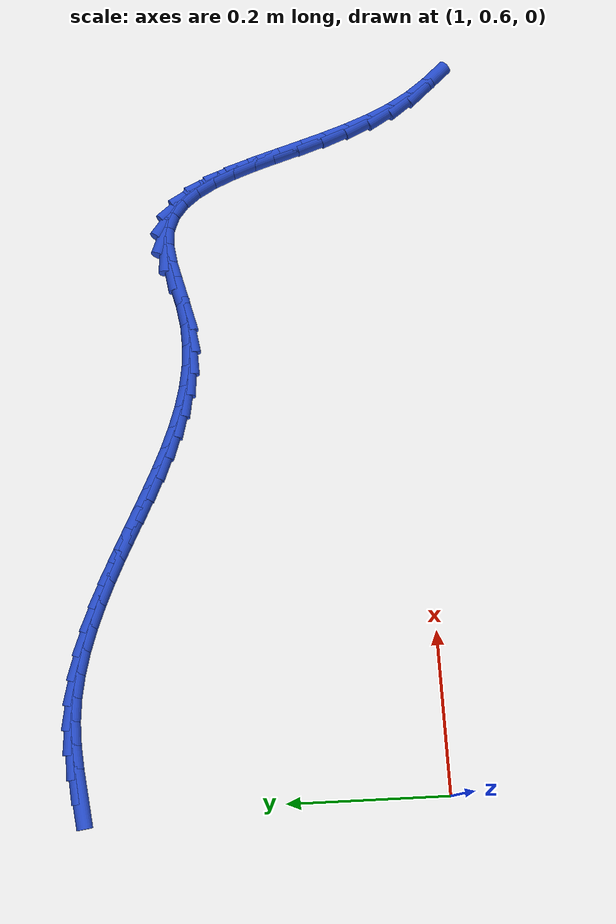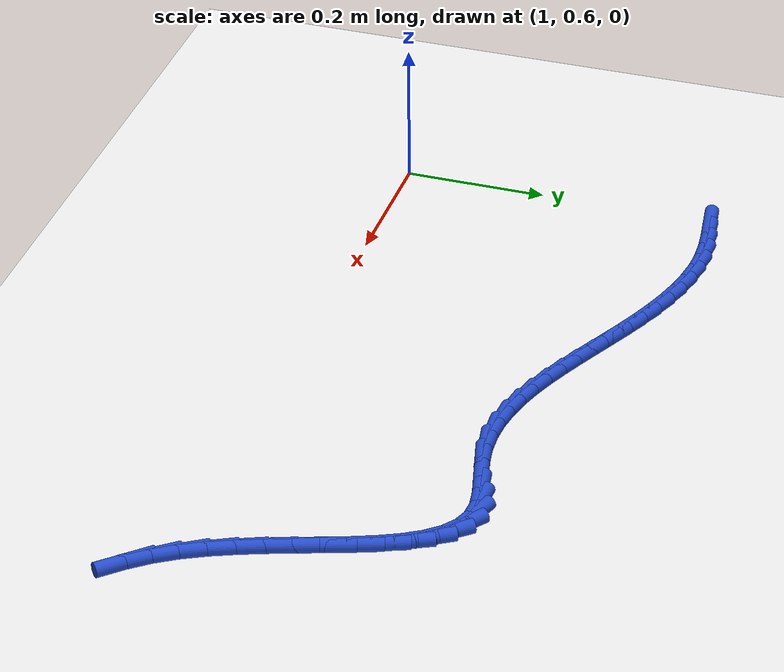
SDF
<sdf version="1.6">
 <world name="default">
  <model name="ground_plane">
   <static>1</static>
   <link name="link">
    <collision name="collision">
     <geometry><plane><normal>0 0 1</normal><size>100 100</size></plane></geometry>
     <surface><friction><ode><mu>100</mu><mu2>50</mu2></ode></friction></surface>
    </collision>
    <visual name="visual">
     <cast_shadows>0</cast_shadows>
     <geometry><plane><normal>0 0 1</normal><size>100 100</size></plane></geometry>
     <material>
      <script><uri>file://media/materials/scripts/gazebo.material</uri><name>Gazebo/WhiteGlow</name></script>
     </material>
    </visual>
   </link>
  </model>
  <model name="line">
   <link name="link_57">
    <pose>1.0230441852304586 1.0486521585114175 0.01 0 1.57 0.14526111254245366</pose>
    <collision name="collision">
     <geometry><cylinder><radius>0.01</radius><length>0.08</length></cylinder></geometry>
    </collision>
    <visual name="visual">
     <material>
      <script><name>Gazebo/Blue</name><uri>file://media/materials/scripts/gazebo.material</uri></script>
     </material>
     <geometry><cylinder><radius>0.01</radius><length>0.08</length></cylinder></geometry>
    </visual>
   </link>
   <link name="link_58">
    <pose>1.0520572898040104 1.0528965296354693 0.01 0 1.57 0.1042041462762869</pose>
    <collision name="collision">
     <geometry><cylinder><radius>0.01</radius><length>0.08</length></cylinder></geometry>
    </collision>
    <visual name="visual">
     <material>
      <script><name>Gazebo/Blue</name><uri>file://media/materials/scripts/gazebo.material</uri></script>
     </material>
     <geometry><cylinder><radius>0.01</radius><length>0.08</length></cylinder></geometry>
    </visual>
   </link>
   <link name="link_59">
    <pose>1.0807810896717482 1.0559005496120655 0.01 0 1.57 0.03121616731461939</pose>
    <collision name="collision">
     <geometry><cylinder><radius>0.01</radius><length>0.08</length></cylinder></geometry>
    </collision>
    <visual name="visual">
     <material>
      <script><name>Gazebo/Blue</name><uri>file://media/materials/scripts/gazebo.material</uri></script>
     </material>
     <geometry><cylinder><radius>0.01</radius><length>0.08</length></cylinder></geometry>
    </visual>
   </link>
   <link name="link_60">
    <pose>1.1094391803537835 1.056795436058363 0.01 0 1.57 -0.06659063743221426</pose>
    <collision name="collision">
     <geometry><cylinder><radius>0.01</radius><length>0.08</length></cylinder></geometry>
    </collision>
    <visual name="visual">
     <material>
      <script><name>Gazebo/Blue</name><uri>file://media/materials/scripts/gazebo.material</uri></script>
     </material>
     <geometry><cylinder><radius>0.01</radius><length>0.08</length></cylinder></geometry>
    </visual>
   </link>
   <link name="link_61">
    <pose>1.1382141633560712 1.0548764543040272 0.01 0 1.57 -0.15920112076810233</pose>
    <collision name="collision">
     <geometry><cylinder><radius>0.01</radius><length>0.08</length></cylinder></geometry>
    </collision>
    <visual name="visual">
     <material>
      <script><name>Gazebo/Blue</name><uri>file://media/materials/scripts/gazebo.material</uri></script>
     </material>
     <geometry><cylinder><radius>0.01</radius><length>0.08</length></cylinder></geometry>
    </visual>
   </link>
   <link name="link_62">
    <pose>1.1670883401589136 1.050240419897703 0.01 0 1.57 -0.23806759459187515</pose>
    <collision name="collision">
     <geometry><cylinder><radius>0.01</radius><length>0.08</length></cylinder></geometry>
    </collision>
    <visual name="visual">
     <material>
      <script><name>Gazebo/Blue</name><uri>file://media/materials/scripts/gazebo.material</uri></script>
     </material>
     <geometry><cylinder><radius>0.01</radius><length>0.08</length></cylinder></geometry>
    </visual>
   </link>
   <link name="link_63">
    <pose>1.1959829302676999 1.0432285830565193 0.01 0 1.57 -0.303990715160315</pose>
    <collision name="collision">
     <geometry><cylinder><radius>0.01</radius><length>0.08</length></cylinder></geometry>
    </collision>
    <visual name="visual">
     <material>
      <script><name>Gazebo/Blue</name><uri>file://media/materials/scripts/gazebo.material</uri></script>
     </material>
     <geometry><cylinder><radius>0.01</radius><length>0.08</length></cylinder></geometry>
    </visual>
   </link>
   <link name="link_64">
    <pose>1.2248191383475184 1.034182253384738 0.01 0 1.57 -0.35807937355999697</pose>
    <collision name="collision">
     <geometry><cylinder><radius>0.01</radius><length>0.08</length></cylinder></geometry>
    </collision>
    <visual name="visual">
     <material>
      <script><name>Gazebo/Blue</name><uri>file://media/materials/scripts/gazebo.material</uri></script>
     </material>
     <geometry><cylinder><radius>0.01</radius><length>0.08</length></cylinder></geometry>
    </visual>
   </link>
   <link name="link_65">
    <pose>1.2535181690634607 1.0234427404866215 0.01 0 1.57 -0.40145683568590046</pose>
    <collision name="collision">
     <geometry><cylinder><radius>0.01</radius><length>0.08</length></cylinder></geometry>
    </collision>
    <visual name="visual">
     <material>
      <script><name>Gazebo/Blue</name><uri>file://media/materials/scripts/gazebo.material</uri></script>
     </material>
     <geometry><cylinder><radius>0.01</radius><length>0.08</length></cylinder></geometry>
    </visual>
   </link>
   <link name="link_66">
    <pose>1.2820012270806178 1.0113513539664323 0.01 0 1.57 -0.4346371529740864</pose>
    <collision name="collision">
     <geometry><cylinder><radius>0.01</radius><length>0.08</length></cylinder></geometry>
    </collision>
    <visual name="visual">
     <material>
      <script><name>Gazebo/Blue</name><uri>file://media/materials/scripts/gazebo.material</uri></script>
     </material>
     <geometry><cylinder><radius>0.01</radius><length>0.08</length></cylinder></geometry>
    </visual>
   </link>
   <link name="link_67">
    <pose>1.310209523903029 0.998255778376063 0.01 0 1.57 -0.45589552437854947</pose>
    <collision name="collision">
     <geometry><cylinder><radius>0.01</radius><length>0.08</length></cylinder></geometry>
    </collision>
    <visual name="visual">
     <material>
      <script><name>Gazebo/Blue</name><uri>file://media/materials/scripts/gazebo.material</uri></script>
     </material>
     <geometry><cylinder><radius>0.01</radius><length>0.08</length></cylinder></geometry>
    </visual>
   </link>
   <link name="link_68">
    <pose>1.3381878306703134 0.9845366963464692 0.01 0 1.57 -0.4647398906761913</pose>
    <collision name="collision">
     <geometry><cylinder><radius>0.01</radius><length>0.08</length></cylinder></geometry>
    </collision>
    <visual name="visual">
     <material>
      <script><name>Gazebo/Blue</name><uri>file://media/materials/scripts/gazebo.material</uri></script>
     </material>
     <geometry><cylinder><radius>0.01</radius><length>0.08</length></cylinder></geometry>
    </visual>
   </link>
   <link name="link_69">
    <pose>1.366014325423496 0.9705854352310186 0.01 0 1.57 -0.46121374476185983</pose>
    <collision name="collision">
     <geometry><cylinder><radius>0.01</radius><length>0.08</length></cylinder></geometry>
    </collision>
    <visual name="visual">
     <material>
      <script><name>Gazebo/Blue</name><uri>file://media/materials/scripts/gazebo.material</uri></script>
     </material>
     <geometry><cylinder><radius>0.01</radius><length>0.08</length></cylinder></geometry>
    </visual>
   </link>
   <link name="link_70">
    <pose>1.3937672025947738 0.9567933276059359 0.01 0 1.57 -0.4451175134729485</pose>
    <collision name="collision">
     <geometry><cylinder><radius>0.01</radius><length>0.08</length></cylinder></geometry>
    </collision>
    <visual name="visual">
     <material>
      <script><name>Gazebo/Blue</name><uri>file://media/materials/scripts/gazebo.material</uri></script>
     </material>
     <geometry><cylinder><radius>0.01</radius><length>0.08</length></cylinder></geometry>
    </visual>
   </link>
   <link name="link_71">
    <pose>1.4215246566163435 0.9435517060474471 0.01 0 1.57 -0.416013657188687</pose>
    <collision name="collision">
     <geometry><cylinder><radius>0.01</radius><length>0.08</length></cylinder></geometry>
    </collision>
    <visual name="visual">
     <material>
      <script><name>Gazebo/Blue</name><uri>file://media/materials/scripts/gazebo.material</uri></script>
     </material>
     <geometry><cylinder><radius>0.01</radius><length>0.08</length></cylinder></geometry>
    </visual>
   </link>
   <link name="link_72">
    <pose>1.449364881920404 0.9312519031317767 0.01 0 1.57 -0.3732869835336579</pose>
    <collision name="collision">
     <geometry><cylinder><radius>0.01</radius><length>0.08</length></cylinder></geometry>
    </collision>
    <visual name="visual">
     <material>
      <script><name>Gazebo/Blue</name><uri>file://media/materials/scripts/gazebo.material</uri></script>
     </material>
     <geometry><cylinder><radius>0.01</radius><length>0.08</length></cylinder></geometry>
    </visual>
   </link>
   <link name="link_73">
    <pose>1.4773660729391522 0.9202852514351507 0.01 0 1.57 -0.31628200689793046</pose>
    <collision name="collision">
     <geometry><cylinder><radius>0.01</radius><length>0.08</length></cylinder></geometry>
    </collision>
    <visual name="visual">
     <material>
      <script><name>Gazebo/Blue</name><uri>file://media/materials/scripts/gazebo.material</uri></script>
     </material>
     <geometry><cylinder><radius>0.01</radius><length>0.08</length></cylinder></geometry>
    </visual>
   </link>
   <link name="link_74">
    <pose>1.5056064241047866 0.9110430835337937 0.01 0 1.57 -0.24454770696590786</pose>
    <collision name="collision">
     <geometry><cylinder><radius>0.01</radius><length>0.08</length></cylinder></geometry>
    </collision>
    <visual name="visual">
     <material>
      <script><name>Gazebo/Blue</name><uri>file://media/materials/scripts/gazebo.material</uri></script>
     </material>
     <geometry><cylinder><radius>0.01</radius><length>0.08</length></cylinder></geometry>
    </visual>
   </link>
   <link name="link_75">
    <pose>1.534164129849504 0.9039167320039315 0.01 0 1.57 -0.15820672280961398</pose>
    <collision name="collision">
     <geometry><cylinder><radius>0.01</radius><length>0.08</length></cylinder></geometry>
    </collision>
    <visual name="visual">
     <material>
      <script><name>Gazebo/Blue</name><uri>file://media/materials/scripts/gazebo.material</uri></script>
     </material>
     <geometry><cylinder><radius>0.01</radius><length>0.08</length></cylinder></geometry>
    </visual>
   </link>
   <link name="link_76">
    <pose>1.5631173846055015 0.8992975294217889 0.01 0 1.57 -0.05840772057856388</pose>
    <collision name="collision">
     <geometry><cylinder><radius>0.01</radius><length>0.08</length></cylinder></geometry>
    </collision>
    <visual name="visual">
     <material>
      <script><name>Gazebo/Blue</name><uri>file://media/materials/scripts/gazebo.material</uri></script>
     </material>
     <geometry><cylinder><radius>0.01</radius><length>0.08</length></cylinder></geometry>
    </visual>
   </link>
   <link name="link_77">
    <pose>1.5925443828049772 0.8975768083635911 0.01 0 1.57 0.052292134917893925</pose>
    <collision name="collision">
     <geometry><cylinder><radius>0.01</radius><length>0.08</length></cylinder></geometry>
    </collision>
    <visual name="visual">
     <material>
      <script><name>Gazebo/Blue</name><uri>file://media/materials/scripts/gazebo.material</uri></script>
     </material>
     <geometry><cylinder><radius>0.01</radius><length>0.08</length></cylinder></geometry>
    </visual>
   </link>
   <link name="link_78">
    <pose>1.62252331888013 0.8991459014055637 0.01 0 1.57 0.16843909581495528</pose>
    <collision name="collision">
     <geometry><cylinder><radius>0.01</radius><length>0.08</length></cylinder></geometry>
    </collision>
    <visual name="visual">
     <material>
      <script><name>Gazebo/Blue</name><uri>file://media/materials/scripts/gazebo.material</uri></script>
     </material>
     <geometry><cylinder><radius>0.01</radius><length>0.08</length></cylinder></geometry>
    </visual>
   </link>
   <link name="link_79">
    <pose>1.6531147956445158 0.9043479928407998 0.01 0 1.57 0.246419456238911</pose>
    <collision name="collision">
     <geometry><cylinder><radius>0.01</radius><length>0.08</length></cylinder></geometry>
    </collision>
    <visual name="visual">
     <material>
      <script><name>Gazebo/Blue</name><uri>file://media/materials/scripts/gazebo.material</uri></script>
     </material>
     <geometry><cylinder><radius>0.01</radius><length>0.08</length></cylinder></geometry>
    </visual>
   </link>
   <link name="link_80">
    <pose>1.6838506464597114 0.9120790242835288 0.01 0 1.57 0.24621888849881454</pose>
    <collision name="collision">
     <geometry><cylinder><radius>0.01</radius><length>0.08</length></cylinder></geometry>
    </collision>
    <visual name="visual">
     <material>
      <script><name>Gazebo/Blue</name><uri>file://media/materials/scripts/gazebo.material</uri></script>
     </material>
     <geometry><cylinder><radius>0.01</radius><length>0.08</length></cylinder></geometry>
    </visual>
   </link>
   <link name="link_81">
    <pose>1.7136540949832957 0.9195691717953438 0.01 0 1.57 0.1567446117254684</pose>
    <collision name="collision">
     <geometry><cylinder><radius>0.01</radius><length>0.08</length></cylinder></geometry>
    </collision>
    <visual name="visual">
     <material>
      <script><name>Gazebo/Blue</name><uri>file://media/materials/scripts/gazebo.material</uri></script>
     </material>
     <geometry><cylinder><radius>0.01</radius><length>0.08</length></cylinder></geometry>
    </visual>
   </link>
   <link name="link_82">
    <pose>1.7414147061505718 0.923956487471135 0.01 0 1.57 -0.058823728341692555</pose>
    <collision name="collision">
     <geometry><cylinder><radius>0.01</radius><length>0.08</length></cylinder></geometry>
    </collision>
    <visual name="visual">
     <material>
      <script><name>Gazebo/Blue</name><uri>file://media/materials/scripts/gazebo.material</uri></script>
     </material>
     <geometry><cylinder><radius>0.01</radius><length>0.08</length></cylinder></geometry>
    </visual>
   </link>
   <link name="link_83">
    <pose>1.76607659959248 0.9225041073741331 0.01 0 1.57 -0.36235637092920775</pose>
    <collision name="collision">
     <geometry><cylinder><radius>0.01</radius><length>0.08</length></cylinder></geometry>
    </collision>
    <visual name="visual">
     <material>
      <script><name>Gazebo/Blue</name><uri>file://media/materials/scripts/gazebo.material</uri></script>
     </material>
     <geometry><cylinder><radius>0.01</radius><length>0.08</length></cylinder></geometry>
    </visual>
   </link>
   <link name="link_84">
    <pose>1.787427753654674 0.9144099817119741 0.01 0 1.57 -0.6485422178990449</pose>
    <collision name="collision">
     <geometry><cylinder><radius>0.01</radius><length>0.08</length></cylinder></geometry>
    </collision>
    <visual name="visual">
     <material>
      <script><name>Gazebo/Blue</name><uri>file://media/materials/scripts/gazebo.material</uri></script>
     </material>
     <geometry><cylinder><radius>0.01</radius><length>0.08</length></cylinder></geometry>
    </visual>
   </link>
   <link name="link_85">
    <pose>1.805920140667035 0.9003944778103256 0.01 0 1.57 -0.8722530127503931</pose>
    <collision name="collision">
     <geometry><cylinder><radius>0.01</radius><length>0.08</length></cylinder></geometry>
    </collision>
    <visual name="visual">
     <material>
      <script><name>Gazebo/Blue</name><uri>file://media/materials/scripts/gazebo.material</uri></script>
     </material>
     <geometry><cylinder><radius>0.01</radius><length>0.08</length></cylinder></geometry>
    </visual>
   </link>
   <link name="link_86">
    <pose>1.8220236654863038 0.8812190790087221 0.01 0 1.57 -1.0291213548574096</pose>
    <collision name="collision">
     <geometry><cylinder><radius>0.01</radius><length>0.08</length></cylinder></geometry>
    </collision>
    <visual name="visual">
     <material>
      <script><name>Gazebo/Blue</name><uri>file://media/materials/scripts/gazebo.material</uri></script>
     </material>
     <geometry><cylinder><radius>0.01</radius><length>0.08</length></cylinder></geometry>
    </visual>
   </link>
   <link name="link_87">
    <pose>1.8362082329692222 0.8576452686466974 0.01 0 1.57 -1.133048025057399</pose>
    <collision name="collision">
     <geometry><cylinder><radius>0.01</radius><length>0.08</length></cylinder></geometry>
    </collision>
    <visual name="visual">
     <material>
      <script><name>Gazebo/Blue</name><uri>file://media/materials/scripts/gazebo.material</uri></script>
     </material>
     <geometry><cylinder><radius>0.01</radius><length>0.08</length></cylinder></geometry>
    </visual>
   </link>
   <link name="link_88">
    <pose>1.8489437479725324 0.8304345300637854 0.01 0 1.57 -1.1982839200838664</pose>
    <collision name="collision">
     <geometry><cylinder><radius>0.01</radius><length>0.08</length></cylinder></geometry>
    </collision>
    <visual name="visual">
     <material>
      <script><name>Gazebo/Blue</name><uri>file://media/materials/scripts/gazebo.material</uri></script>
     </material>
     <geometry><cylinder><radius>0.01</radius><length>0.08</length></cylinder></geometry>
    </visual>
   </link>
   <link name="link_89">
    <pose>1.860700115352976 0.8003483465995199 0.01 0 1.57 -1.2347559364976086</pose>
    <collision name="collision">
     <geometry><cylinder><radius>0.01</radius><length>0.08</length></cylinder></geometry>
    </collision>
    <visual name="visual">
     <material>
      <script><name>Gazebo/Blue</name><uri>file://media/materials/scripts/gazebo.material</uri></script>
     </material>
     <geometry><cylinder><radius>0.01</radius><length>0.08</length></cylinder></geometry>
    </visual>
   </link>
   <link name="link_90">
    <pose>1.871947239967294 0.7681482015934351 0.01 0 1.57 -1.24841343447321</pose>
    <collision name="collision">
     <geometry><cylinder><radius>0.01</radius><length>0.08</length></cylinder></geometry>
    </collision>
    <visual name="visual">
     <material>
      <script><name>Gazebo/Blue</name><uri>file://media/materials/scripts/gazebo.material</uri></script>
     </material>
     <geometry><cylinder><radius>0.01</radius><length>0.08</length></cylinder></geometry>
    </visual>
   </link>
   <link name="link_91">
    <pose>1.8831550266722292 0.7345955783850652 0.01 0 1.57 -1.242282938332239</pose>
    <collision name="collision">
     <geometry><cylinder><radius>0.01</radius><length>0.08</length></cylinder></geometry>
    </collision>
    <visual name="visual">
     <material>
      <script><name>Gazebo/Blue</name><uri>file://media/materials/scripts/gazebo.material</uri></script>
     </material>
     <geometry><cylinder><radius>0.01</radius><length>0.08</length></cylinder></geometry>
    </visual>
   </link>
   <link name="link_92">
    <pose>1.8947933803245223 0.7004519603139437 0.01 0 1.57 -1.2172252776160262</pose>
    <collision name="collision">
     <geometry><cylinder><radius>0.01</radius><length>0.08</length></cylinder></geometry>
    </collision>
    <visual name="visual">
     <material>
      <script><name>Gazebo/Blue</name><uri>file://media/materials/scripts/gazebo.material</uri></script>
     </material>
     <geometry><cylinder><radius>0.01</radius><length>0.08</length></cylinder></geometry>
    </visual>
   </link>
   <link name="link_93">
    <pose>1.9073322057809154 0.6664788307196042 0.01 0 1.57 -1.1723475183427303</pose>
    <collision name="collision">
     <geometry><cylinder><radius>0.01</radius><length>0.08</length></cylinder></geometry>
    </collision>
    <visual name="visual">
     <material>
      <script><name>Gazebo/Blue</name><uri>file://media/materials/scripts/gazebo.material</uri></script>
     </material>
     <geometry><cylinder><radius>0.01</radius><length>0.08</length></cylinder></geometry>
    </visual>
   </link>
   <link name="link_94">
    <pose>1.921241407898149 0.6334376729415814 0.01 0 1.57 -1.1052204282376692</pose>
    <collision name="collision">
     <geometry><cylinder><radius>0.01</radius><length>0.08</length></cylinder></geometry>
    </collision>
    <visual name="visual">
     <material>
      <script><name>Gazebo/Blue</name><uri>file://media/materials/scripts/gazebo.material</uri></script>
     </material>
     <geometry><cylinder><radius>0.01</radius><length>0.08</length></cylinder></geometry>
    </visual>
   </link>
   <link name="link_95">
    <pose>1.9369908915329666 0.6020899703194091 0.01 0 1.57 -1.0122619260701462</pose>
    <collision name="collision">
     <geometry><cylinder><radius>0.01</radius><length>0.08</length></cylinder></geometry>
    </collision>
    <visual name="visual">
     <material>
      <script><name>Gazebo/Blue</name><uri>file://media/materials/scripts/gazebo.material</uri></script>
     </material>
     <geometry><cylinder><radius>0.01</radius><length>0.08</length></cylinder></geometry>
    </visual>
   </link>
   <link name="link_96">
    <pose>1.9550479290360399 0.5731945369711137 0.01 0 1.57 -0.9067380624810444</pose>
    <collision name="collision">
     <geometry><cylinder><radius>0.01</radius><length>0.08</length></cylinder></geometry>
    </collision>
    <visual name="visual">
     <material>
      <script><name>Gazebo/Blue</name><uri>file://media/materials/scripts/gazebo.material</uri></script>
     </material>
     <geometry><cylinder><radius>0.01</radius><length>0.08</length></cylinder></geometry>
    </visual>
   </link>
   <link name="link_97">
    <pose>1.975472461173329 0.5470971743956057 0.01 0 1.57 -0.8246938967247427</pose>
    <collision name="collision">
     <geometry><cylinder><radius>0.01</radius><length>0.08</length></cylinder></geometry>
    </collision>
    <visual name="visual">
     <material>
      <script><name>Gazebo/Blue</name><uri>file://media/materials/scripts/gazebo.material</uri></script>
     </material>
     <geometry><cylinder><radius>0.01</radius><length>0.08</length></cylinder></geometry>
    </visual>
   </link>
  </model>
 </world>
</sdf>
